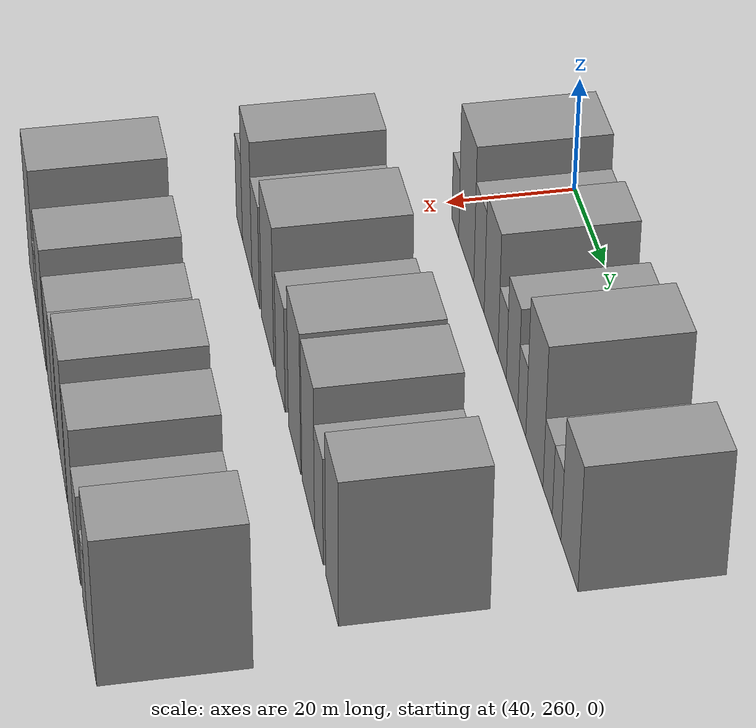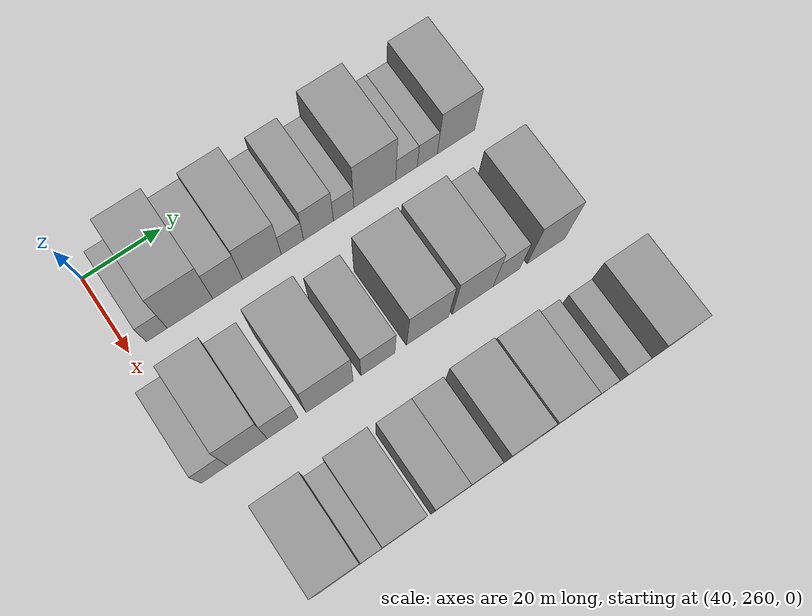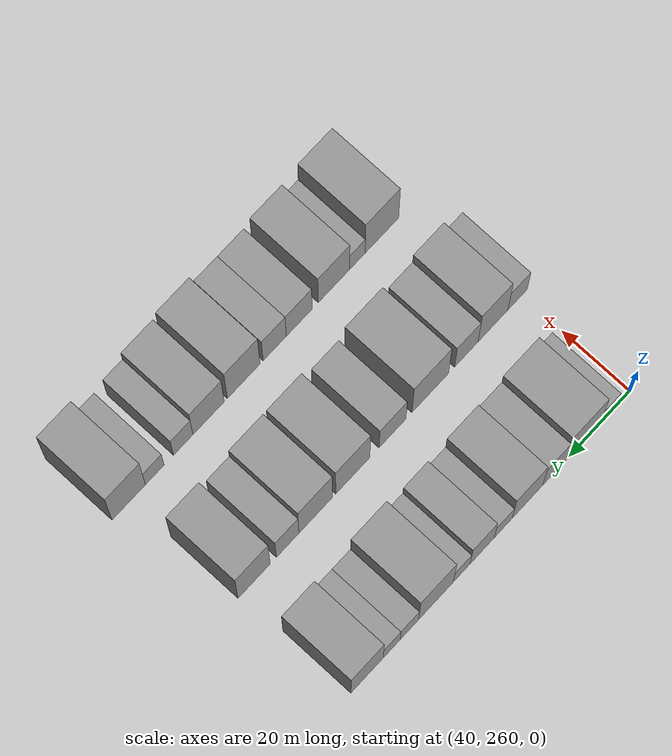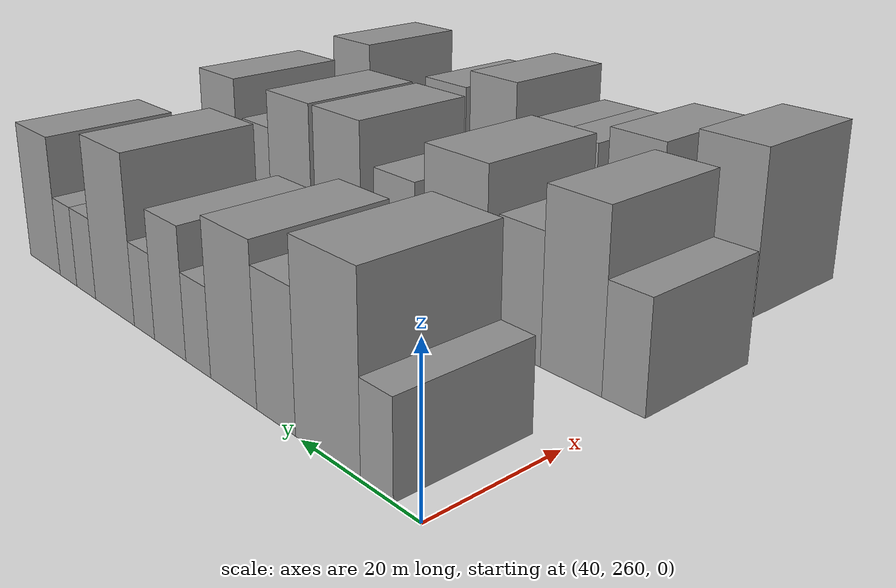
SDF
<sdf version="1.6">
 <world name="default">
  <model name="building_71">
   <static>1</static>
   <pose>50.0000 266.9462 0 0.000000 0.000000 0.000000</pose>
   <link name="link">
    <pose>0 0 6.00 0 0 0</pose>
    <collision name="collision"><geometry><box><size>20.0000 5.2798 12.0000</size></box></geometry></collision>
    <visual name="visual">
     <cast_shadows>0</cast_shadows>
     <geometry><box><size>20.0000 5.2798 12.0000</size></box></geometry>
     <material>
      <script>
       <uri>model://grey_wall/materials/scripts</uri>
       <uri>model://grey_wall/materials/textures</uri>
       <name>vrc/grey_wall</name>
      </script>
     </material>
    </visual>
   </link>
  </model>
  <model name="building_72">
   <static>1</static>
   <pose>50.0000 275.3445 0 0.000000 0.000000 0.000000</pose>
   <link name="link">
    <pose>0 0 12.00 0 0 0</pose>
    <collision name="collision"><geometry><box><size>20.0000 11.5169 24.0000</size></box></geometry></collision>
    <visual name="visual">
     <cast_shadows>0</cast_shadows>
     <geometry><box><size>20.0000 11.5169 24.0000</size></box></geometry>
     <material>
      <script>
       <uri>model://grey_wall/materials/scripts</uri>
       <uri>model://grey_wall/materials/textures</uri>
       <name>vrc/grey_wall</name>
      </script>
     </material>
    </visual>
   </link>
  </model>
  <model name="building_73">
   <static>1</static>
   <pose>50.0000 284.9292 0 0.000000 0.000000 0.000000</pose>
   <link name="link">
    <pose>0 0 9.00 0 0 0</pose>
    <collision name="collision"><geometry><box><size>20.0000 7.6525 18.0000</size></box></geometry></collision>
    <visual name="visual">
     <cast_shadows>0</cast_shadows>
     <geometry><box><size>20.0000 7.6525 18.0000</size></box></geometry>
     <material>
      <script>
       <uri>model://grey_wall/materials/scripts</uri>
       <uri>model://grey_wall/materials/textures</uri>
       <name>vrc/grey_wall</name>
      </script>
     </material>
    </visual>
   </link>
  </model>
  <model name="building_74">
   <static>1</static>
   <pose>50.0000 293.7553 0 0.000000 0.000000 0.000000</pose>
   <link name="link">
    <pose>0 0 10.50 0 0 0</pose>
    <collision name="collision"><geometry><box><size>20.0000 9.9997 21.0000</size></box></geometry></collision>
    <visual name="visual">
     <cast_shadows>0</cast_shadows>
     <geometry><box><size>20.0000 9.9997 21.0000</size></box></geometry>
     <material>
      <script>
       <uri>model://grey_wall/materials/scripts</uri>
       <uri>model://grey_wall/materials/textures</uri>
       <name>vrc/grey_wall</name>
      </script>
     </material>
    </visual>
   </link>
  </model>
  <model name="building_75">
   <static>1</static>
   <pose>50.0000 301.6766 0 0.000000 0.000000 0.000000</pose>
   <link name="link">
    <pose>0 0 6.00 0 0 0</pose>
    <collision name="collision"><geometry><box><size>20.0000 5.8428 12.0000</size></box></geometry></collision>
    <visual name="visual">
     <cast_shadows>0</cast_shadows>
     <geometry><box><size>20.0000 5.8428 12.0000</size></box></geometry>
     <material>
      <script>
       <uri>model://grey_wall/materials/scripts</uri>
       <uri>model://grey_wall/materials/textures</uri>
       <name>vrc/grey_wall</name>
      </script>
     </material>
    </visual>
   </link>
  </model>
  <model name="building_76">
   <static>1</static>
   <pose>50.0000 308.5306 0 0.000000 0.000000 0.000000</pose>
   <link name="link">
    <pose>0 0 9.00 0 0 0</pose>
    <collision name="collision"><geometry><box><size>20.0000 7.8651 18.0000</size></box></geometry></collision>
    <visual name="visual">
     <cast_shadows>0</cast_shadows>
     <geometry><box><size>20.0000 7.8651 18.0000</size></box></geometry>
     <material>
      <script>
       <uri>model://grey_wall/materials/scripts</uri>
       <uri>model://grey_wall/materials/textures</uri>
       <name>vrc/grey_wall</name>
      </script>
     </material>
    </visual>
   </link>
  </model>
  <model name="building_77">
   <static>1</static>
   <pose>50.0000 315.1608 0 0.000000 0.000000 0.000000</pose>
   <link name="link">
    <pose>0 0 6.00 0 0 0</pose>
    <collision name="collision"><geometry><box><size>20.0000 5.3953 12.0000</size></box></geometry></collision>
    <visual name="visual">
     <cast_shadows>0</cast_shadows>
     <geometry><box><size>20.0000 5.3953 12.0000</size></box></geometry>
     <material>
      <script>
       <uri>model://grey_wall/materials/scripts</uri>
       <uri>model://grey_wall/materials/textures</uri>
       <name>vrc/grey_wall</name>
      </script>
     </material>
    </visual>
   </link>
  </model>
  <model name="building_78">
   <static>1</static>
   <pose>50.0000 323.4740 0 0.000000 0.000000 0.000000</pose>
   <link name="link">
    <pose>0 0 12.00 0 0 0</pose>
    <collision name="collision"><geometry><box><size>20.0000 11.2312 24.0000</size></box></geometry></collision>
    <visual name="visual">
     <cast_shadows>0</cast_shadows>
     <geometry><box><size>20.0000 11.2312 24.0000</size></box></geometry>
     <material>
      <script>
       <uri>model://grey_wall/materials/scripts</uri>
       <uri>model://grey_wall/materials/textures</uri>
       <name>vrc/grey_wall</name>
      </script>
     </material>
    </visual>
   </link>
  </model>
  <model name="building_79">
   <static>1</static>
   <pose>50.0000 332.0207 0 0.000000 0.000000 0.000000</pose>
   <link name="link">
    <pose>0 0 6.00 0 0 0</pose>
    <collision name="collision"><geometry><box><size>20.0000 5.8622 12.0000</size></box></geometry></collision>
    <visual name="visual">
     <cast_shadows>0</cast_shadows>
     <geometry><box><size>20.0000 5.8622 12.0000</size></box></geometry>
     <material>
      <script>
       <uri>model://grey_wall/materials/scripts</uri>
       <uri>model://grey_wall/materials/textures</uri>
       <name>vrc/grey_wall</name>
      </script>
     </material>
    </visual>
   </link>
  </model>
  <model name="building_80">
   <static>1</static>
   <pose>50.0000 337.6700 0 0.000000 0.000000 0.000000</pose>
   <link name="link">
    <pose>0 0 6.00 0 0 0</pose>
    <collision name="collision"><geometry><box><size>20.0000 5.4363 12.0000</size></box></geometry></collision>
    <visual name="visual">
     <cast_shadows>0</cast_shadows>
     <geometry><box><size>20.0000 5.4363 12.0000</size></box></geometry>
     <material>
      <script>
       <uri>model://grey_wall/materials/scripts</uri>
       <uri>model://grey_wall/materials/textures</uri>
       <name>vrc/grey_wall</name>
      </script>
     </material>
    </visual>
   </link>
  </model>
  <model name="building_81">
   <static>1</static>
   <pose>50.0000 345.5345 0 0.000000 0.000000 0.000000</pose>
   <link name="link">
    <pose>0 0 10.50 0 0 0</pose>
    <collision name="collision"><geometry><box><size>20.0000 10.2925 21.0000</size></box></geometry></collision>
    <visual name="visual">
     <cast_shadows>0</cast_shadows>
     <geometry><box><size>20.0000 10.2925 21.0000</size></box></geometry>
     <material>
      <script>
       <uri>model://grey_wall/materials/scripts</uri>
       <uri>model://grey_wall/materials/textures</uri>
       <name>vrc/grey_wall</name>
      </script>
     </material>
    </visual>
   </link>
  </model>
  <model name="building_149">
   <static>1</static>
   <pose>82.0000 261.3965 0 0.000000 0.000000 0.000000</pose>
   <link name="link">
    <pose>0 0 7.50 0 0 0</pose>
    <collision name="collision"><geometry><box><size>20.0000 6.4314 15.0000</size></box></geometry></collision>
    <visual name="visual">
     <cast_shadows>0</cast_shadows>
     <geometry><box><size>20.0000 6.4314 15.0000</size></box></geometry>
     <material>
      <script>
       <uri>model://grey_wall/materials/scripts</uri>
       <uri>model://grey_wall/materials/textures</uri>
       <name>vrc/grey_wall</name>
      </script>
     </material>
    </visual>
   </link>
  </model>
  <model name="building_150">
   <static>1</static>
   <pose>82.0000 269.5343 0 0.000000 0.000000 0.000000</pose>
   <link name="link">
    <pose>0 0 12.00 0 0 0</pose>
    <collision name="collision"><geometry><box><size>20.0000 9.8444 24.0000</size></box></geometry></collision>
    <visual name="visual">
     <cast_shadows>0</cast_shadows>
     <geometry><box><size>20.0000 9.8444 24.0000</size></box></geometry>
     <material>
      <script>
       <uri>model://grey_wall/materials/scripts</uri>
       <uri>model://grey_wall/materials/textures</uri>
       <name>vrc/grey_wall</name>
      </script>
     </material>
    </visual>
   </link>
  </model>
  <model name="building_151">
   <static>1</static>
   <pose>82.0000 278.2891 0 0.000000 0.000000 0.000000</pose>
   <link name="link">
    <pose>0 0 9.00 0 0 0</pose>
    <collision name="collision"><geometry><box><size>20.0000 7.6652 18.0000</size></box></geometry></collision>
    <visual name="visual">
     <cast_shadows>0</cast_shadows>
     <geometry><box><size>20.0000 7.6652 18.0000</size></box></geometry>
     <material>
      <script>
       <uri>model://grey_wall/materials/scripts</uri>
       <uri>model://grey_wall/materials/textures</uri>
       <name>vrc/grey_wall</name>
      </script>
     </material>
    </visual>
   </link>
  </model>
  <model name="building_152">
   <static>1</static>
   <pose>82.0000 290.0989 0 0.000000 0.000000 0.000000</pose>
   <link name="link">
    <pose>0 0 12.00 0 0 0</pose>
    <collision name="collision"><geometry><box><size>20.0000 11.9542 24.0000</size></box></geometry></collision>
    <visual name="visual">
     <cast_shadows>0</cast_shadows>
     <geometry><box><size>20.0000 11.9542 24.0000</size></box></geometry>
     <material>
      <script>
       <uri>model://grey_wall/materials/scripts</uri>
       <uri>model://grey_wall/materials/textures</uri>
       <name>vrc/grey_wall</name>
      </script>
     </material>
    </visual>
   </link>
  </model>
  <model name="building_153">
   <static>1</static>
   <pose>82.0000 302.4233 0 0.000000 0.000000 0.000000</pose>
   <link name="link">
    <pose>0 0 9.00 0 0 0</pose>
    <collision name="collision"><geometry><box><size>20.0000 8.6946 18.0000</size></box></geometry></collision>
    <visual name="visual">
     <cast_shadows>0</cast_shadows>
     <geometry><box><size>20.0000 8.6946 18.0000</size></box></geometry>
     <material>
      <script>
       <uri>model://grey_wall/materials/scripts</uri>
       <uri>model://grey_wall/materials/textures</uri>
       <name>vrc/grey_wall</name>
      </script>
     </material>
    </visual>
   </link>
  </model>
  <model name="building_154">
   <static>1</static>
   <pose>82.0000 315.2797 0 0.000000 0.000000 0.000000</pose>
   <link name="link">
    <pose>0 0 12.00 0 0 0</pose>
    <collision name="collision"><geometry><box><size>20.0000 11.0183 24.0000</size></box></geometry></collision>
    <visual name="visual">
     <cast_shadows>0</cast_shadows>
     <geometry><box><size>20.0000 11.0183 24.0000</size></box></geometry>
     <material>
      <script>
       <uri>model://grey_wall/materials/scripts</uri>
       <uri>model://grey_wall/materials/textures</uri>
       <name>vrc/grey_wall</name>
      </script>
     </material>
    </visual>
   </link>
  </model>
  <model name="building_155">
   <static>1</static>
   <pose>82.0000 327.1926 0 0.000000 0.000000 0.000000</pose>
   <link name="link">
    <pose>0 0 12.00 0 0 0</pose>
    <collision name="collision"><geometry><box><size>20.0000 10.8074 24.0000</size></box></geometry></collision>
    <visual name="visual">
     <cast_shadows>0</cast_shadows>
     <geometry><box><size>20.0000 10.8074 24.0000</size></box></geometry>
     <material>
      <script>
       <uri>model://grey_wall/materials/scripts</uri>
       <uri>model://grey_wall/materials/textures</uri>
       <name>vrc/grey_wall</name>
      </script>
     </material>
    </visual>
   </link>
  </model>
  <model name="building_156">
   <static>1</static>
   <pose>82.0000 336.2074 0 0.000000 0.000000 0.000000</pose>
   <link name="link">
    <pose>0 0 9.00 0 0 0</pose>
    <collision name="collision"><geometry><box><size>20.0000 7.2224 18.0000</size></box></geometry></collision>
    <visual name="visual">
     <cast_shadows>0</cast_shadows>
     <geometry><box><size>20.0000 7.2224 18.0000</size></box></geometry>
     <material>
      <script>
       <uri>model://grey_wall/materials/scripts</uri>
       <uri>model://grey_wall/materials/textures</uri>
       <name>vrc/grey_wall</name>
      </script>
     </material>
    </visual>
   </link>
  </model>
  <model name="building_157">
   <static>1</static>
   <pose>82.0000 346.9380 0 0.000000 0.000000 0.000000</pose>
   <link name="link">
    <pose>0 0 12.00 0 0 0</pose>
    <collision name="collision"><geometry><box><size>20.0000 10.2388 24.0000</size></box></geometry></collision>
    <visual name="visual">
     <cast_shadows>0</cast_shadows>
     <geometry><box><size>20.0000 10.2388 24.0000</size></box></geometry>
     <material>
      <script>
       <uri>model://grey_wall/materials/scripts</uri>
       <uri>model://grey_wall/materials/textures</uri>
       <name>vrc/grey_wall</name>
      </script>
     </material>
    </visual>
   </link>
  </model>
  <model name="building_227">
   <static>1</static>
   <pose>114.0000 270.8940 0 0.000000 0.000000 0.000000</pose>
   <link name="link">
    <pose>0 0 12.00 0 0 0</pose>
    <collision name="collision"><geometry><box><size>20.0000 11.0271 24.0000</size></box></geometry></collision>
    <visual name="visual">
     <cast_shadows>0</cast_shadows>
     <geometry><box><size>20.0000 11.0271 24.0000</size></box></geometry>
     <material>
      <script>
       <uri>model://grey_wall/materials/scripts</uri>
       <uri>model://grey_wall/materials/textures</uri>
       <name>vrc/grey_wall</name>
      </script>
     </material>
    </visual>
   </link>
  </model>
  <model name="building_228">
   <static>1</static>
   <pose>114.0000 278.9377 0 0.000000 0.000000 0.000000</pose>
   <link name="link">
    <pose>0 0 6.00 0 0 0</pose>
    <collision name="collision"><geometry><box><size>20.0000 5.0603 12.0000</size></box></geometry></collision>
    <visual name="visual">
     <cast_shadows>0</cast_shadows>
     <geometry><box><size>20.0000 5.0603 12.0000</size></box></geometry>
     <material>
      <script>
       <uri>model://grey_wall/materials/scripts</uri>
       <uri>model://grey_wall/materials/textures</uri>
       <name>vrc/grey_wall</name>
      </script>
     </material>
    </visual>
   </link>
  </model>
  <model name="building_229">
   <static>1</static>
   <pose>114.0000 286.5866 0 0.000000 0.000000 0.000000</pose>
   <link name="link">
    <pose>0 0 10.50 0 0 0</pose>
    <collision name="collision"><geometry><box><size>20.0000 10.2375 21.0000</size></box></geometry></collision>
    <visual name="visual">
     <cast_shadows>0</cast_shadows>
     <geometry><box><size>20.0000 10.2375 21.0000</size></box></geometry>
     <material>
      <script>
       <uri>model://grey_wall/materials/scripts</uri>
       <uri>model://grey_wall/materials/textures</uri>
       <name>vrc/grey_wall</name>
      </script>
     </material>
    </visual>
   </link>
  </model>
  <model name="building_230">
   <static>1</static>
   <pose>114.0000 297.9112 0 0.000000 0.000000 0.000000</pose>
   <link name="link">
    <pose>0 0 9.00 0 0 0</pose>
    <collision name="collision"><geometry><box><size>20.0000 8.4118 18.0000</size></box></geometry></collision>
    <visual name="visual">
     <cast_shadows>0</cast_shadows>
     <geometry><box><size>20.0000 8.4118 18.0000</size></box></geometry>
     <material>
      <script>
       <uri>model://grey_wall/materials/scripts</uri>
       <uri>model://grey_wall/materials/textures</uri>
       <name>vrc/grey_wall</name>
      </script>
     </material>
    </visual>
   </link>
  </model>
  <model name="building_231">
   <static>1</static>
   <pose>114.0000 305.8833 0 0.000000 0.000000 0.000000</pose>
   <link name="link">
    <pose>0 0 9.00 0 0 0</pose>
    <collision name="collision"><geometry><box><size>20.0000 7.5322 18.0000</size></box></geometry></collision>
    <visual name="visual">
     <cast_shadows>0</cast_shadows>
     <geometry><box><size>20.0000 7.5322 18.0000</size></box></geometry>
     <material>
      <script>
       <uri>model://grey_wall/materials/scripts</uri>
       <uri>model://grey_wall/materials/textures</uri>
       <name>vrc/grey_wall</name>
      </script>
     </material>
    </visual>
   </link>
  </model>
  <model name="building_232">
   <static>1</static>
   <pose>114.0000 315.9260 0 0.000000 0.000000 0.000000</pose>
   <link name="link">
    <pose>0 0 12.00 0 0 0</pose>
    <collision name="collision"><geometry><box><size>20.0000 10.5533 24.0000</size></box></geometry></collision>
    <visual name="visual">
     <cast_shadows>0</cast_shadows>
     <geometry><box><size>20.0000 10.5533 24.0000</size></box></geometry>
     <material>
      <script>
       <uri>model://grey_wall/materials/scripts</uri>
       <uri>model://grey_wall/materials/textures</uri>
       <name>vrc/grey_wall</name>
      </script>
     </material>
    </visual>
   </link>
  </model>
  <model name="building_233">
   <static>1</static>
   <pose>114.0000 327.2244 0 0.000000 0.000000 0.000000</pose>
   <link name="link">
    <pose>0 0 10.50 0 0 0</pose>
    <collision name="collision"><geometry><box><size>20.0000 10.0436 21.0000</size></box></geometry></collision>
    <visual name="visual">
     <cast_shadows>0</cast_shadows>
     <geometry><box><size>20.0000 10.0436 21.0000</size></box></geometry>
     <material>
      <script>
       <uri>model://grey_wall/materials/scripts</uri>
       <uri>model://grey_wall/materials/textures</uri>
       <name>vrc/grey_wall</name>
      </script>
     </material>
    </visual>
   </link>
  </model>
  <model name="building_234">
   <static>1</static>
   <pose>114.0000 335.3623 0 0.000000 0.000000 0.000000</pose>
   <link name="link">
    <pose>0 0 7.50 0 0 0</pose>
    <collision name="collision"><geometry><box><size>20.0000 6.2321 15.0000</size></box></geometry></collision>
    <visual name="visual">
     <cast_shadows>0</cast_shadows>
     <geometry><box><size>20.0000 6.2321 15.0000</size></box></geometry>
     <material>
      <script>
       <uri>model://grey_wall/materials/scripts</uri>
       <uri>model://grey_wall/materials/textures</uri>
       <name>vrc/grey_wall</name>
      </script>
     </material>
    </visual>
   </link>
  </model>
  <model name="building_235">
   <static>1</static>
   <pose>114.0000 344.4592 0 0.000000 0.000000 0.000000</pose>
   <link name="link">
    <pose>0 0 6.00 0 0 0</pose>
    <collision name="collision"><geometry><box><size>20.0000 5.9617 12.0000</size></box></geometry></collision>
    <visual name="visual">
     <cast_shadows>0</cast_shadows>
     <geometry><box><size>20.0000 5.9617 12.0000</size></box></geometry>
     <material>
      <script>
       <uri>model://grey_wall/materials/scripts</uri>
       <uri>model://grey_wall/materials/textures</uri>
       <name>vrc/grey_wall</name>
      </script>
     </material>
    </visual>
   </link>
  </model>
  <model name="building_236">
   <static>1</static>
   <pose>114.0000 352.7556 0 0.000000 0.000000 0.000000</pose>
   <link name="link">
    <pose>0 0 12.00 0 0 0</pose>
    <collision name="collision"><geometry><box><size>20.0000 10.6313 24.0000</size></box></geometry></collision>
    <visual name="visual">
     <cast_shadows>0</cast_shadows>
     <geometry><box><size>20.0000 10.6313 24.0000</size></box></geometry>
     <material>
      <script>
       <uri>model://grey_wall/materials/scripts</uri>
       <uri>model://grey_wall/materials/textures</uri>
       <name>vrc/grey_wall</name>
      </script>
     </material>
    </visual>
   </link>
  </model>
 </world>
</sdf>
